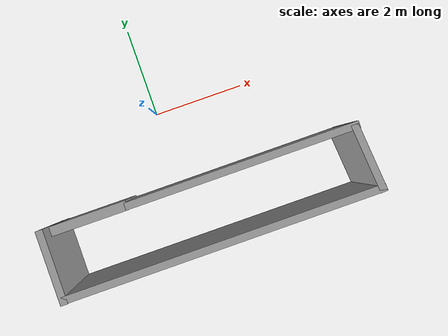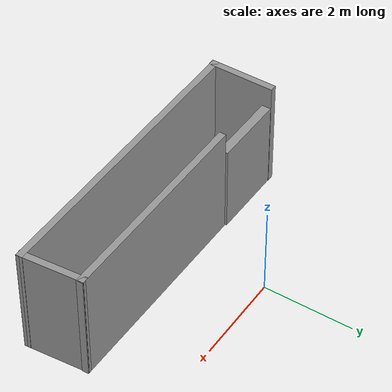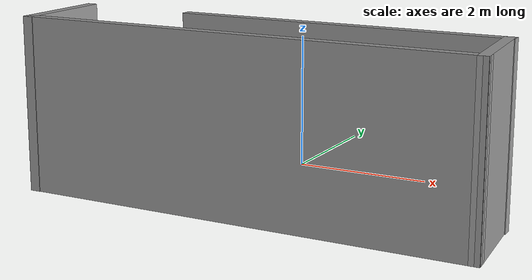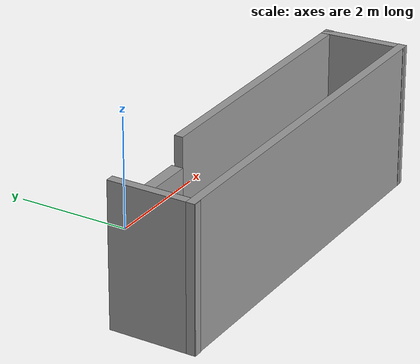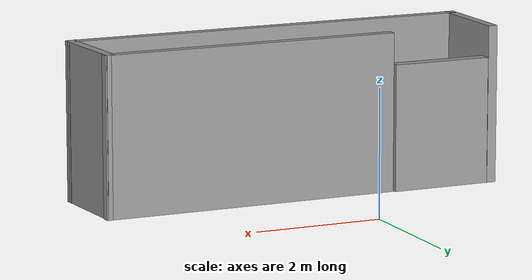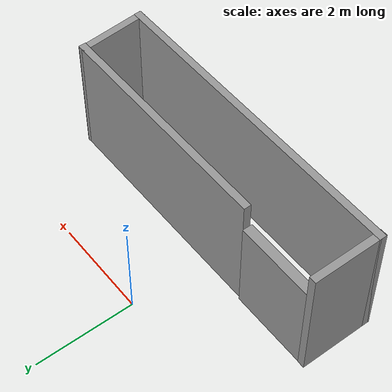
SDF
<?xml version='1.0'?>
<sdf version='1.7'>
  <model name='Hong'>
    <pose>0.512877 -1.5275 0 0 -0 0</pose>
    <link name='Door_0'>
      <collision name='Door_0_Collision'>
        <geometry>
          <box>
            <size>1.5993 0.2 2</size>
          </box>
        </geometry>
        <pose>0 0 1 0 -0 0</pose>
      </collision>
      <visual name='Door_0_Visual'>
        <pose>0 0 1 0 -0 0</pose>
        <geometry>
          <box>
            <size>1.5993 0.2 2</size>
          </box>
        </geometry>
        <material>
          <script>
            <uri>file://media/materials/scripts/gazebo.material</uri>
            <name>Gazebo/Grey</name>
          </script>
        </material>
      </visual>
      <pose>-2.36044 -0.136708 0 0 -0 3.13925</pose>
    </link>
    <link name='Wall_0'>
      <collision name='Wall_0_Collision'>
        <geometry>
          <box>
            <size>1.5 0.15 2.5</size>
          </box>
        </geometry>
        <pose>0 0 1.25 0 -0 0</pose>
      </collision>
      <visual name='Wall_0_Visual'>
        <pose>0 0 1.25 0 -0 0</pose>
        <geometry>
          <box>
            <size>1.5 0.15 2.5</size>
          </box>
        </geometry>
        <material>
          <script>
            <uri>file://media/materials/scripts/gazebo.material</uri>
            <name>Gazebo/Grey</name>
          </script>
          <ambient>1 1 1 1</ambient>
        </material>
        <meta>
          <layer>0</layer>
        </meta>
      </visual>
      <pose>-3.23288 -0.7775 0 0 -0 -1.5708</pose>
    </link>
    <link name='Wall_1'>
      <collision name='Wall_1_Collision'>
        <geometry>
          <box>
            <size>6.61001 0.15 2.5</size>
          </box>
        </geometry>
        <pose>0 0 1.25 0 -0 0</pose>
      </collision>
      <visual name='Wall_1_Visual'>
        <pose>0 0 1.25 0 -0 0</pose>
        <geometry>
          <box>
            <size>6.61001 0.15 2.5</size>
          </box>
        </geometry>
        <material>
          <script>
            <uri>file://media/materials/scripts/gazebo.material</uri>
            <name>Gazebo/Grey</name>
          </script>
          <ambient>1 1 1 1</ambient>
        </material>
        <meta>
          <layer>0</layer>
        </meta>
      </visual>
      <pose>-0.002877 -1.4425 0 0 -0 0</pose>
    </link>
    <link name='Wall_2'>
      <collision name='Wall_2_Collision'>
        <geometry>
          <box>
            <size>1.4513 0.15 2.5</size>
          </box>
        </geometry>
        <pose>0 0 1.25 0 -0 0</pose>
      </collision>
      <visual name='Wall_2_Visual'>
        <pose>0 0 1.25 0 -0 0</pose>
        <geometry>
          <box>
            <size>1.4513 0.15 2.5</size>
          </box>
        </geometry>
        <material>
          <script>
            <uri>file://media/materials/scripts/gazebo.material</uri>
            <name>Gazebo/Grey</name>
          </script>
          <ambient>1 1 1 1</ambient>
        </material>
        <meta>
          <layer>0</layer>
        </meta>
      </visual>
      <pose>3.17509 -0.793935 0 0 -0 1.65086</pose>
    </link>
    <link name='Wall_4'>
      <collision name='Wall_4_Collision'>
        <geometry>
          <box>
            <size>4.75 0.15 2.5</size>
          </box>
        </geometry>
        <pose>0 0 1.25 0 -0 0</pose>
      </collision>
      <visual name='Wall_4_Visual'>
        <pose>0 0 1.25 0 -0 0</pose>
        <geometry>
          <box>
            <size>4.75 0.15 2.5</size>
          </box>
        </geometry>
        <material>
          <script>
            <uri>file://media/materials/scripts/gazebo.material</uri>
            <name>Gazebo/Grey</name>
          </script>
          <ambient>1 1 1 1</ambient>
        </material>
        <meta>
          <layer>0</layer>
        </meta>
      </visual>
      <pose>0.839969 -0.14537 0 0 -0 3.14159</pose>
    </link>
    <static>1</static>
  </model>
</sdf>
